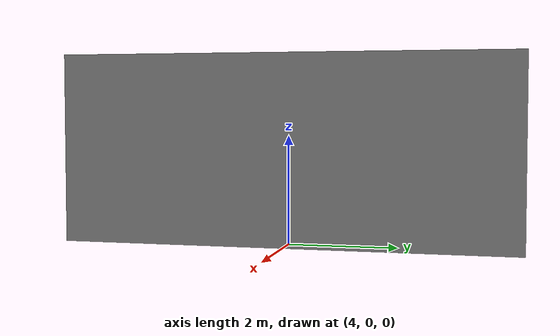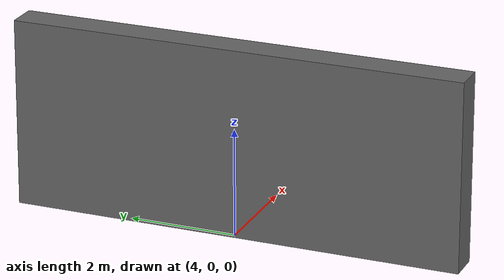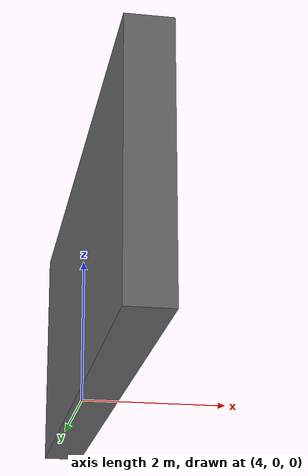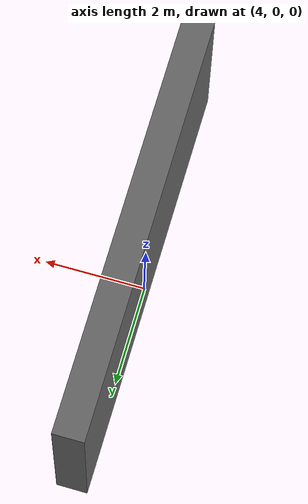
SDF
<?xml version="1.0" ?>
<sdf version="1.10">
    <model name="horizontalWall8_4x0_6x3_5">
      <static>true</static>
      <pose>4.2 0 1.75 0 0 0</pose>
      <link name="link">
        <collision name="collision">
          <geometry><box><size>0.6 8.4 3.5</size></box></geometry>
        </collision>
        <visual name="visual">
          <geometry><box><size>0.6 8.4 3.5</size></box></geometry>
          <material>
            <ambient>0.4 0.4 0.4 1</ambient>
            <diffuse>0.4 0.4 0.4 1</diffuse>
            <specular>0.2 0.2 0.2 1</specular>
          </material>
        </visual>
      </link>
    </model>
</sdf>
